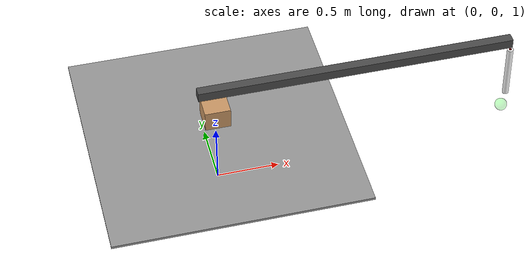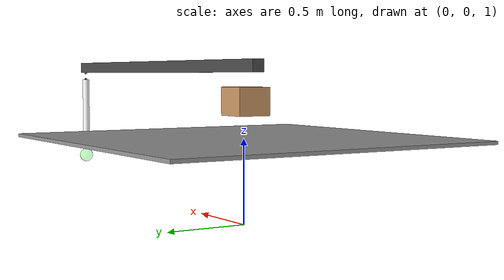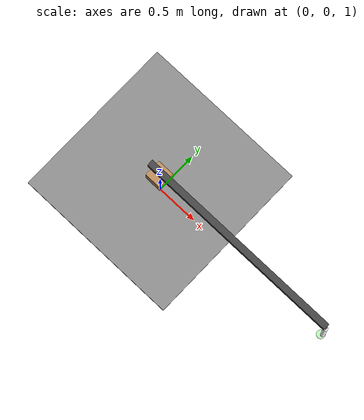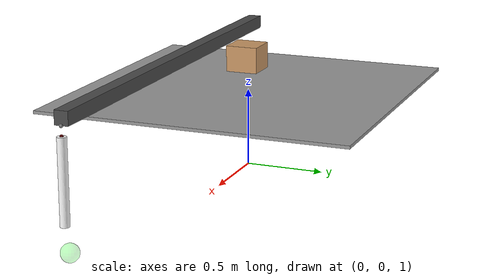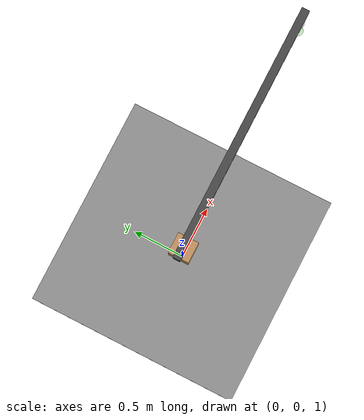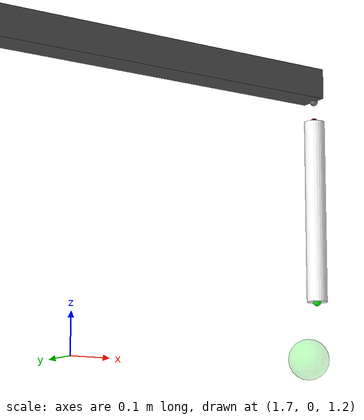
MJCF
<mujoco model="IC Single Crane">
  <include file="../common.xml"/>
  <include file="optimized_planner_003ic.xml" />

  <!-- set userdata =model.nv+model.nq for storeing qpos and qvel from ROS-->
  <!-- add three more userdata for payload tip x, y z acc, i.e. 14+3 -->
  <size memory="1M" nuserdata="17"/>

  <custom>
    <!-- agent -->
    <!-- 0: predictive sampling 5: CEM -->
    <numeric name="agent_planner" data="0" />
    <numeric name="agent_horizon" data="0.8" />
    <numeric name="agent_timestep" data="0.01" />
    <numeric name="agent_policy_width" data="0.0035" />
    <numeric name="sampling_spline_points" data="4" />
    <numeric name="sampling_exploration" data="0.1" />
    <numeric name="sampling_trajectories" data="20" />
    <numeric name="sampling_representation" data="0" />
    <!-- parameter -->
    <numeric name="residual_GoalX" data="2.363 -2.5 2.5" />
    <numeric name="residual_GoalY" data="0 -2.5 2.5" />
    <numeric name="residual_GoalZ" data="1.23 -2 2" />
    <!-- estimator -->
    <!-- cause serious rollout divergence -->
    <numeric name="estimator" data="0" />
    <numeric name="estimator_sensor_start" data="4" />
    <numeric name="estimator_number_sensor" data="1" />
    <numeric name="estimator_timestep" data="0.004" />

  </custom>

  <worldbody>

    <body name="target_marker" pos="2.363 0 1.23" mocap="true">
      <site size=".05" rgba="0 1 0 .25"/>
    </body>

  </worldbody>

  <contact>
        <exclude name="target_hit_paylaod" body1="target_marker" body2="payload"/>
        <exclude name="target_hit_boom" body1="target_marker" body2="boom"/>
  </contact>

  <sensor>
    <!-- cost -->
    <user name="Distance" dim="1" user="2 1200 0 5000 0.04" />
    <user name="Sway_Angle" dim="1" user="2 4800 500 8000 0.04"/>
     <user name="KE" dim="1" user="2 0 0 100 0.04"/>
    <user name="Control" dim="2" user="0 20 0.0 100.0"/>

    <!-- estimator sensor-->
    <jointpos name="4" joint="hoist-slider"/>

    <!-- trace -->
    <framepos name="trace0" objtype="site" objname="payload_center"/>
    <framepos name="trace1" objtype="site" objname="boom_imu"/>

    <!-- residual -->

    <framepos name="payload_position" objtype="site" objname="payload_center"/>
    <framequat name="payload_orientation" objtype="site" objname="payload_center"/>
    <framelinvel name="payload_linear_velocity" objtype="site" objname="payload_center"/>
    <frameangvel name="payload_angular_velocity" objtype="site" objname="payload_center"/>

    <framequat name="cab_angular_orientation" objtype="site" objname="cab_imu"/>
    <frameangvel name="cab_angular_velocity" objtype="site" objname="cab_imu"/>

    <framequat name="boom_angular_orientation" objtype="site" objname="boom_imu"/>
    <frameangvel name="boom_angular_velocity" objtype="site" objname="boom_imu"/>

    <framepos name="boom_tip_position" objtype="site" objname="boom_tip_site"/>

  </sensor>

    <!-- good planner parameter for laptop -->

</mujoco>

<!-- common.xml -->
<mujoco>

    <visual>
        <headlight ambient=".4 .4 .4" diffuse=".8 .8 .8" specular="0.1 0.1 0.1"/>
        <map znear=".01"/>
        <quality shadowsize="2048"/>
        <global elevation="-15"/>
    </visual>

    <asset>
        <texture name="blue_grid" type="2d" builtin="checker" rgb1=".02 .14 .44" rgb2=".27 .55 1" width="300" height="300" mark="edge" markrgb="1 1 1"/>
        <material name="blue_grid" texture="blue_grid" texrepeat="1 1" texuniform="true" reflectance=".2"/>

        <texture name="grey_grid" type="2d" builtin="checker" rgb1=".26 .26 .26" rgb2=".6 .6 .6" width="300" height="300" mark="edge" markrgb="1 1 1"/>
        <material name="grey_grid" texture="grey_grid" texrepeat="1 1" texuniform="true" reflectance=".2"/>
        <texture name="skybox" type="skybox" builtin="gradient" rgb1=".66 .79 1" rgb2=".9 .91 .93" width="800" height="800"/>

        <material name="self" rgba=".7 .5 .3 1"/>
        <material name="self_default" rgba=".7 .5 .3 1"/>
        <material name="self_highlight" rgba="0 .5 .3 1"/>
        <material name="effector" rgba=".7 .4 .2 1"/>
        <material name="effector_default" rgba=".7 .4 .2 1"/>
        <material name="effector_highlight" rgba="0 .5 .3 1"/>
        <material name="decoration" rgba=".2 .6 .3 1"/>
        <material name="eye" rgba="0 .2 1 1"/>
        <material name="target" rgba=".6 .3 .3 1"/>
        <material name="target_default" rgba=".6 .3 .3 1"/>
        <material name="target_highlight" rgba=".6 .3 .3 .4"/>
        <material name="site" rgba=".5 .5 .5 .3"/>
    </asset>

    <size memory="1M"/>

    <statistic extent="0.4" center="0.3 0.1 0"/>

    <visual>
        <quality shadowsize="8192"/>
        <global azimuth="180" elevation="-30"/>
    </visual>

    <default>
        <geom friction="1.0"/>
    </default>

    <compiler angle="radian" autolimits="true"/>

    <asset>
        <mesh name="apple" file="../../shared_assets/apple/apple.obj" />
        <mesh name="apple_contact0" file="../../shared_assets/apple/contact0.stl"  />
        <mesh name="apple_contact1" file="../../shared_assets/apple/contact1.stl"  />

        <mesh name="doorknob" file="../../shared_assets/doorknob/doorknob.obj" />

        <mesh name="flashlight" file="../../shared_assets/flashlight/flashlight.obj" />
        <mesh name="flashlight_contact0" file="../../shared_assets/flashlight/contact0.stl"  />
        <mesh name="flashlight_contact1" file="../../shared_assets/flashlight/contact1.stl"  />

        <mesh name="hammer" file="../../shared_assets/hammer/hammer.obj" />
        <mesh name="hammer_contact0" file="../../shared_assets/hammer/contact0.stl"  />
        <mesh name="hammer_contact1" file="../../shared_assets/hammer/contact1.stl"  />

        <mesh name="phone" file="../../shared_assets/phone/phone.obj" />
        <mesh name="phone_contact0" file="../../shared_assets/phone/contact0.stl"  />
        <mesh name="phone_contact1" file="../../shared_assets/phone/contact1.stl"  />
        <mesh name="phone_contact2" file="../../shared_assets/phone/contact2.stl"  />

        <mesh name="stapler" file="../../shared_assets/stapler/stapler.obj" />
        <mesh name="stapler_contact0" file="../../shared_assets/stapler/contact0.stl"  />
        <mesh name="stapler_contact1" file="../../shared_assets/stapler/contact1.stl"  />
        <mesh name="stapler_contact2" file="../../shared_assets/stapler/contact2.stl"  />
        <mesh name="stapler_contact3" file="../../shared_assets/stapler/contact3.stl"  />
        <mesh name="stapler_contact4" file="../../shared_assets/stapler/contact4.stl"  />

        <mesh name="waterbottle" file="../../shared_assets/waterbottle/waterbottle.obj" />
        <mesh name="waterbottle_contact0" file="../../shared_assets/waterbottle/contact0.stl"  />
        <mesh name="waterbottle_contact1" file="../../shared_assets/waterbottle/contact1.stl"  />
    </asset>

</mujoco>

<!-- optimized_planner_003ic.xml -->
<mujoco>
  <option integrator="implicitfast" timestep="0.01">
    <flag energy="enable" warmstart="enable" contact="disable"/>
  </option>

  <compiler autolimits="true" angle="radian"/>

  <worldbody>
    <light diffuse=".75 .75 .75" pos="0 0 10" dir="0 0 -1" castshadow="false"/>

    <body name="base" pos="0 0 1.5" euler="0 0 0" gravcomp="1" mocap="false">
      <geom name="base_geom" type="box" size="1 1 .01" rgba=".6 .6 .6 1" contype="0" conaffinity="0"/>

      <body name="cab" pos="0.0 -0.01 0.216" gravcomp="1">
        <!-- joint name="slew-joint" type="hinge" axis="0 0 1" range="-1.3 1.3" pos="0 0 -.5" stiffness="0" damping="2.97258206" frictionloss="0" armature="129.825003"/ -->
        <joint name="slew-joint" type="hinge" axis="0 0 1" pos="0 0 -.092" range="-1.3 1.3" armature="0.0" damping="0.0"/>
        <geom name="cab_geom" type="box" size=".1015 .1015 .0825" rgba=".8 .6 .4 1" mass="7.935"/>

        <site name="cab_imu" pos="0 0 0" size="0.01"/>

        <body name="boom" pos="1.125 0 0.205" gravcomp="1">
          <!-- joint name="luff-joint" type="hinge" pos="-1.125 0 -0.205" axis="0 -1 0" range="0.001 1.2"  stiffness="0" damping="0.0241868441" frictionloss="0" armature="22553.9006"/ -->
          <joint name="luff-joint" type="hinge" pos="-1.0392 0 -.179" axis="0 -1 0" range="0.001 1.2" armature="7110.0" damping="0.4454"/>
          <geom name="boom_geom" type="box" size="1.259 0.038 0.038" rgba=".3 .3 .3 1" mass="5.777"/>

          <site name="boom_imu" pos="0 0 0" size="0.01"/>

          <site name="boom_tip_site" pos="1.259 0 -0.038" size="0.01"/>
          <body name="boom_tip" pos="1.259 0 -0.038" gravcomp="1">
            <joint name="boom-tip-x-rot-hinge" type="hinge" axis="1 0 0" range="-1.5 1.5" stiffness="0.01" damping="0.1" frictionloss="0" armature="0.0"/>
            <joint name="boom-tip-y-rot-hinge" type="hinge" axis="0 1 0" range="-1.5 1.5" stiffness="0.01" damping="0.1" frictionloss="0" armature="0.0"/>
            <joint name="hoist-slider" type="slide" axis="0 0 -1" limited="true" range="0.07 2" stiffness="0" damping="0.0" frictionloss="0" armature="46.9666336"/>

            <body name="payload_connector" pos="0 0 -.0535">
              <geom name="payload_connector_geom" type="sphere" size="0.01" rgba=".3 0 0 1" mass="0.0000000001" contype="0" conaffinity="0"/>

              <body name="payload">
                <geom name="payload_geom" pos="0 0 -0.2286" type="cylinder" size="0.0254 0.2286" rgba="1 1 1 1" mass=".318"/>

                <site name="payload_top" pos="0 0 0" size="0.01" rgba="1 0 0 1"/>
                <site name="payload_center" pos="0 0 -0.2286" size="0.01" rgba="0 0 1 1"/>
                <site name="payload_bottom" pos="0 0 -0.4572" size="0.01" rgba="0 1 0 1"/>
              </body>
            </body>
          </body>
        </body>
      </body>

      <site name="cab_bottom" pos="0.0 -0.01 0" size="0.01" rgba="1 0 0 1"/>
    </body>

  </worldbody>

  <actuator>
      <velocity name="slew-velocity" joint="slew-joint" ctrlrange="-.7854 .7854" kv="2999.75774"/>
      <velocity name="luff-velocity" joint="luff-joint" ctrlrange="-.2618 .2618" kv="136228.878"/>
      <velocity name="hoist-velocity" joint="hoist-slider" ctrlrange="-.8 .8" kv="962.107008"/>

  </actuator>

</mujoco>
